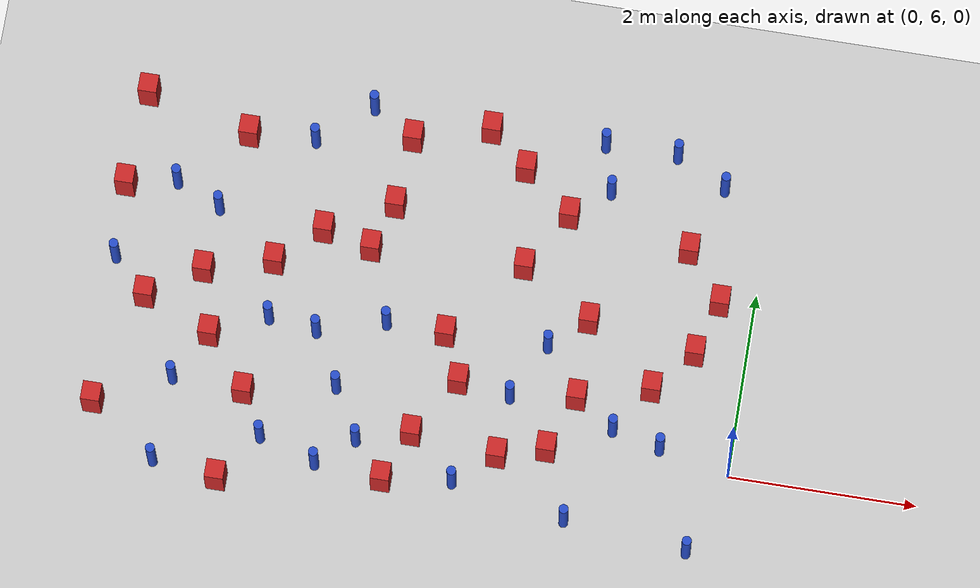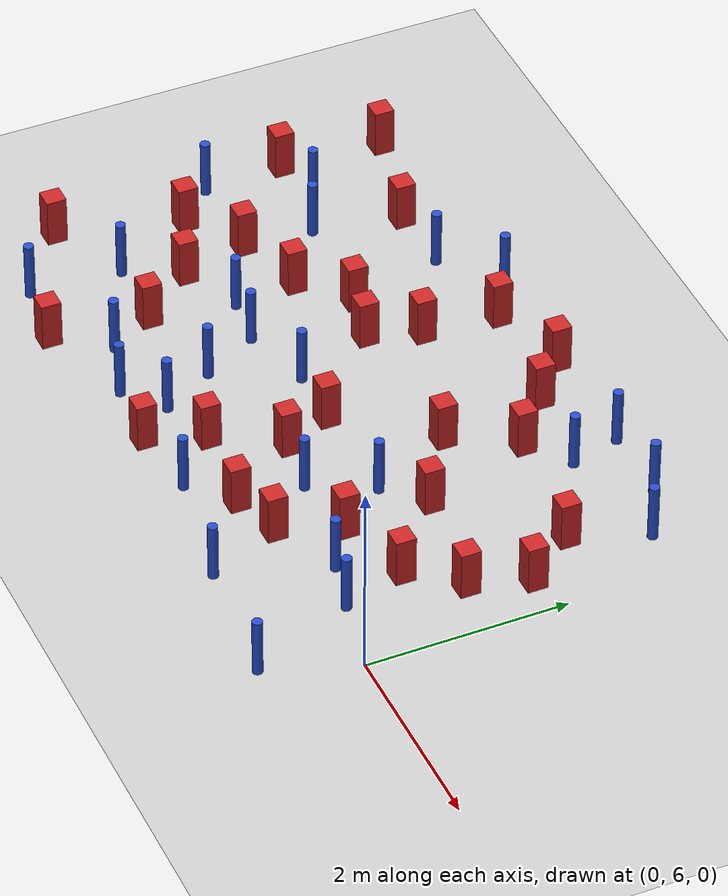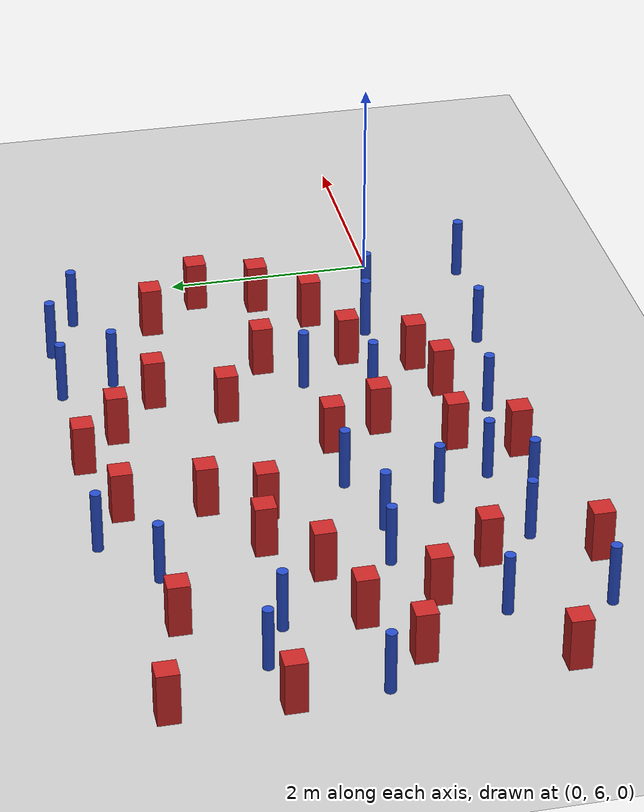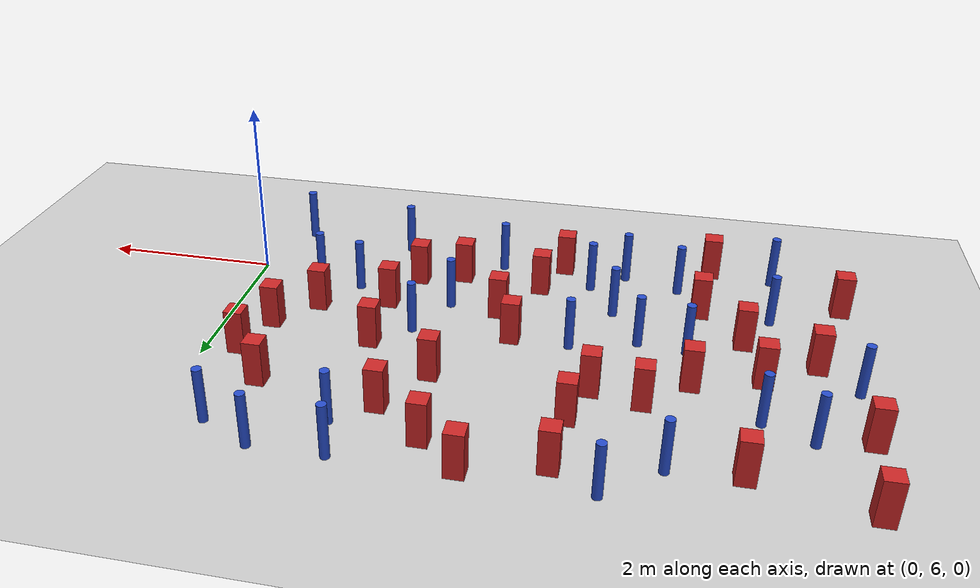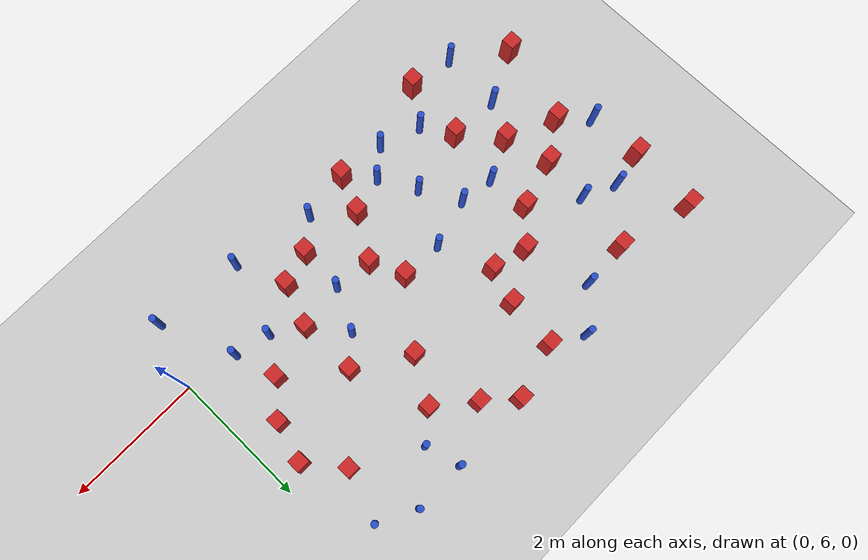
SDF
<sdf version="1.6">
 <world name="default">
  <model name="ground_plane">
   <static>1</static>
   <link name="link">
    <collision name="collision">
     <geometry><plane><normal>0 0 1</normal><size>100 100</size></plane></geometry>
     <surface><friction><ode><mu>100</mu><mu2>50</mu2></ode></friction></surface>
    </collision>
    <visual name="visual">
     <cast_shadows>0</cast_shadows>
     <geometry><plane><normal>0 0 1</normal><size>100 100</size></plane></geometry>
     <material>
      <ambient>1.0 1.0 1.0 1.0</ambient>
      <diffuse>0.8 0.8 0.8 1.0</diffuse>
      <specular>0.01 0.01 0.01 1.000000</specular>
     </material>
    </visual>
   </link>
  </model>
  <model name="square_post_obstacle0">
   <static>true</static>
   <pose>-5.17980695407 6.07324742547 8.22691968438e-08 7.2212513382e-06 -7.54495500217e-07 2.29674213826e-05</pose>
   <link name="link">
    <pose>0 0 0.25 0 -0 0</pose>
    <inertial>
     <mass>100</mass>
     <inertia>
      <ixx>0.166667</ixx>
      <ixy>0</ixy>
      <ixz>0</ixz>
      <iyy>0.166667</iyy>
      <iyz>0</iyz>
      <izz>0.166667</izz>
     </inertia>
    </inertial>
    <collision name="collision"><geometry><box><size>.2 .2 .5</size></box></geometry></collision>
    <visual name="visual">
     <geometry><box><size>.2 .2 .5</size></box></geometry>
     <material>
      <script><name>Gazebo/Red</name><uri>file://media/materials/scripts/gazebo.material</uri></script>
     </material>
    </visual>
   </link>
  </model>
  <model name="pole_obstacle2">
   <static>true</static>
   <pose>-5.05019088084 6.91182319331 2.88873142074e-08 -9.90536690842e-09 4.60219948965e-07 -1.20965994976e-07</pose>
   <link name="link">
    <pose>0 0 0.3 0 -0 0</pose>
    <inertial>
     <mass>1</mass>
     <inertia><ixx>0.145833</ixx><ixy>0</ixy><ixz>0</ixz><iyy>0.145833</iyy><iyz>0</iyz><izz>0.125</izz></inertia>
    </inertial>
    <collision name="collision">
     <geometry><cylinder><radius>0.05</radius><length>.6</length></cylinder></geometry>
    </collision>
    <visual name="visual">
     <geometry><cylinder><radius>0.05</radius><length>.6</length></cylinder></geometry>
     <material>
      <script><name>Gazebo/Blue</name><uri>file://media/materials/scripts/gazebo.material</uri></script>
     </material>
    </visual>
   </link>
  </model>
  <model name="square_post_obstacle2">
   <static>true</static>
   <pose>-5.81809010166 7.31867256626 8.22691968438e-08 7.2212513382e-06 -7.54495500217e-07 2.29674213826e-05</pose>
   <link name="link">
    <pose>0 0 0.25 0 -0 0</pose>
    <inertial>
     <mass>100</mass>
     <inertia>
      <ixx>0.166667</ixx>
      <ixy>0</ixy>
      <ixz>0</ixz>
      <iyy>0.166667</iyy>
      <iyz>0</iyz>
      <izz>0.166667</izz>
     </inertia>
    </inertial>
    <collision name="collision"><geometry><box><size>.2 .2 .5</size></box></geometry></collision>
    <visual name="visual">
     <geometry><box><size>.2 .2 .5</size></box></geometry>
     <material>
      <script><name>Gazebo/Red</name><uri>file://media/materials/scripts/gazebo.material</uri></script>
     </material>
    </visual>
   </link>
  </model>
  <model name="square_post_obstacle8">
   <static>true</static>
   <pose>-3.58809597633 5.36162875197 8.22691968438e-08 7.2212513382e-06 -7.54495500217e-07 2.29674213826e-05</pose>
   <link name="link">
    <pose>0 0 0.25 0 -0 0</pose>
    <inertial>
     <mass>100</mass>
     <inertia>
      <ixx>0.166667</ixx>
      <ixy>0</ixy>
      <ixz>0</ixz>
      <iyy>0.166667</iyy>
      <iyz>0</iyz>
      <izz>0.166667</izz>
     </inertia>
    </inertial>
    <collision name="collision"><geometry><box><size>.2 .2 .5</size></box></geometry></collision>
    <visual name="visual">
     <geometry><box><size>.2 .2 .5</size></box></geometry>
     <material>
      <script><name>Gazebo/Red</name><uri>file://media/materials/scripts/gazebo.material</uri></script>
     </material>
    </visual>
   </link>
  </model>
  <model name="square_post_obstacle9">
   <static>true</static>
   <pose>-2.43418255598 5.8071528394 8.22691968438e-08 7.2212513382e-06 -7.54495500217e-07 2.29674213826e-05</pose>
   <link name="link">
    <pose>0 0 0.25 0 -0 0</pose>
    <inertial>
     <mass>100</mass>
     <inertia>
      <ixx>0.166667</ixx>
      <ixy>0</ixy>
      <ixz>0</ixz>
      <iyy>0.166667</iyy>
      <iyz>0</iyz>
      <izz>0.166667</izz>
     </inertia>
    </inertial>
    <collision name="collision"><geometry><box><size>.2 .2 .5</size></box></geometry></collision>
    <visual name="visual">
     <geometry><box><size>.2 .2 .5</size></box></geometry>
     <material>
      <script><name>Gazebo/Red</name><uri>file://media/materials/scripts/gazebo.material</uri></script>
     </material>
    </visual>
   </link>
  </model>
  <model name="pole_obstacle13">
   <static>true</static>
   <pose>-6.26059618692 8.23797673308 2.88873142074e-08 -9.9053668967e-09 4.60219948993e-07 -1.20965994957e-07</pose>
   <link name="link">
    <pose>0 0 0.3 0 -0 0</pose>
    <inertial>
     <mass>1</mass>
     <inertia><ixx>0.145833</ixx><ixy>0</ixy><ixz>0</ixz><iyy>0.145833</iyy><iyz>0</iyz><izz>0.125</izz></inertia>
    </inertial>
    <collision name="collision">
     <geometry><cylinder><radius>0.05</radius><length>.6</length></cylinder></geometry>
    </collision>
    <visual name="visual">
     <geometry><cylinder><radius>0.05</radius><length>.6</length></cylinder></geometry>
     <material>
      <script><name>Gazebo/Blue</name><uri>file://media/materials/scripts/gazebo.material</uri></script>
     </material>
    </visual>
   </link>
  </model>
  <model name="pole_obstacle14">
   <static>true</static>
   <pose>-1.27438803534 6.27796606329 2.88873142074e-08 -9.90536689852e-09 4.60219948989e-07 -1.2096599496e-07</pose>
   <link name="link">
    <pose>0 0 0.3 0 -0 0</pose>
    <inertial>
     <mass>1</mass>
     <inertia><ixx>0.145833</ixx><ixy>0</ixy><ixz>0</ixz><iyy>0.145833</iyy><iyz>0</iyz><izz>0.125</izz></inertia>
    </inertial>
    <collision name="collision">
     <geometry><cylinder><radius>0.05</radius><length>.6</length></cylinder></geometry>
    </collision>
    <visual name="visual">
     <geometry><cylinder><radius>0.05</radius><length>.6</length></cylinder></geometry>
     <material>
      <script><name>Gazebo/Blue</name><uri>file://media/materials/scripts/gazebo.material</uri></script>
     </material>
    </visual>
   </link>
  </model>
  <model name="pole_obstacle17">
   <static>true</static>
   <pose>-5.99743441476 5.19034438451 2.88873142074e-08 -9.90536690842e-09 4.60219948965e-07 -1.20965994976e-07</pose>
   <link name="link">
    <pose>0 0 0.3 0 -0 0</pose>
    <inertial>
     <mass>1</mass>
     <inertia><ixx>0.145833</ixx><ixy>0</ixy><ixz>0</ixz><iyy>0.145833</iyy><iyz>0</iyz><izz>0.125</izz></inertia>
    </inertial>
    <collision name="collision">
     <geometry><cylinder><radius>0.05</radius><length>.6</length></cylinder></geometry>
    </collision>
    <visual name="visual">
     <geometry><cylinder><radius>0.05</radius><length>.6</length></cylinder></geometry>
     <material>
      <script><name>Gazebo/Blue</name><uri>file://media/materials/scripts/gazebo.material</uri></script>
     </material>
    </visual>
   </link>
  </model>
  <model name="square_post_obstacle14">
   <static>true</static>
   <pose>-5.59246458541 8.87830148658 8.22691968438e-08 7.22125133819e-06 -7.54495500217e-07 2.29674213826e-05</pose>
   <link name="link">
    <pose>0 0 0.25 0 -0 0</pose>
    <inertial>
     <mass>100</mass>
     <inertia>
      <ixx>0.166667</ixx>
      <ixy>0</ixy>
      <ixz>0</ixz>
      <iyy>0.166667</iyy>
      <iyz>0</iyz>
      <izz>0.166667</izz>
     </inertia>
    </inertial>
    <collision name="collision"><geometry><box><size>.2 .2 .5</size></box></geometry></collision>
    <visual name="visual">
     <geometry><box><size>.2 .2 .5</size></box></geometry>
     <material>
      <script><name>Gazebo/Red</name><uri>file://media/materials/scripts/gazebo.material</uri></script>
     </material>
    </visual>
   </link>
  </model>
  <model name="pole_obstacle31">
   <static>true</static>
   <pose>-4.22217192614 6.27587902542 2.88873142074e-08 -9.90536690842e-09 4.60219948965e-07 -1.20965994976e-07</pose>
   <link name="link">
    <pose>0 0 0.3 0 -0 0</pose>
    <inertial>
     <mass>1</mass>
     <inertia><ixx>0.145833</ixx><ixy>0</ixy><ixz>0</ixz><iyy>0.145833</iyy><iyz>0</iyz><izz>0.125</izz></inertia>
    </inertial>
    <collision name="collision">
     <geometry><cylinder><radius>0.05</radius><length>.6</length></cylinder></geometry>
    </collision>
    <visual name="visual">
     <geometry><cylinder><radius>0.05</radius><length>.6</length></cylinder></geometry>
     <material>
      <script><name>Gazebo/Blue</name><uri>file://media/materials/scripts/gazebo.material</uri></script>
     </material>
    </visual>
   </link>
  </model>
  <model name="pole_obstacle39">
   <static>true</static>
   <pose>-4.32792303996 9.38055101068 2.88873142074e-08 -9.9053668967e-09 4.60219948993e-07 -1.20965994957e-07</pose>
   <link name="link">
    <pose>0 0 0.3 0 -0 0</pose>
    <inertial>
     <mass>1</mass>
     <inertia><ixx>0.145833</ixx><ixy>0</ixy><ixz>0</ixz><iyy>0.145833</iyy><iyz>0</iyz><izz>0.125</izz></inertia>
    </inertial>
    <collision name="collision">
     <geometry><cylinder><radius>0.05</radius><length>.6</length></cylinder></geometry>
    </collision>
    <visual name="visual">
     <geometry><cylinder><radius>0.05</radius><length>.6</length></cylinder></geometry>
     <material>
      <script><name>Gazebo/Blue</name><uri>file://media/materials/scripts/gazebo.material</uri></script>
     </material>
    </visual>
   </link>
  </model>
  <model name="pole_obstacle40">
   <static>true</static>
   <pose>-2.39878397548 6.46350765532 2.88873142074e-08 -9.90536689859e-09 4.60219948989e-07 -1.20965994961e-07</pose>
   <link name="link">
    <pose>0 0 0.3 0 -0 0</pose>
    <inertial>
     <mass>1</mass>
     <inertia><ixx>0.145833</ixx><ixy>0</ixy><ixz>0</ixz><iyy>0.145833</iyy><iyz>0</iyz><izz>0.125</izz></inertia>
    </inertial>
    <collision name="collision">
     <geometry><cylinder><radius>0.05</radius><length>.6</length></cylinder></geometry>
    </collision>
    <visual name="visual">
     <geometry><cylinder><radius>0.05</radius><length>.6</length></cylinder></geometry>
     <material>
      <script><name>Gazebo/Blue</name><uri>file://media/materials/scripts/gazebo.material</uri></script>
     </material>
    </visual>
   </link>
  </model>
  <model name="square_post_obstacle33">
   <static>true</static>
   <pose>-0.548821335224 7.24011114074 8.22691968438e-08 7.2212513382e-06 -7.54495500217e-07 2.29674213826e-05</pose>
   <link name="link">
    <pose>0 0 0.25 0 -0 0</pose>
    <inertial>
     <mass>100</mass>
     <inertia>
      <ixx>0.166667</ixx>
      <ixy>0</ixy>
      <ixz>0</ixz>
      <iyy>0.166667</iyy>
      <iyz>0</iyz>
      <izz>0.166667</izz>
     </inertia>
    </inertial>
    <collision name="collision"><geometry><box><size>.2 .2 .5</size></box></geometry></collision>
    <visual name="visual">
     <geometry><box><size>.2 .2 .5</size></box></geometry>
     <material>
      <script><name>Gazebo/Red</name><uri>file://media/materials/scripts/gazebo.material</uri></script>
     </material>
    </visual>
   </link>
  </model>
  <model name="square_post_obstacle36">
   <static>true</static>
   <pose>-4.10678557496 7.83194500794 8.22691968438e-08 7.2212513382e-06 -7.54495500217e-07 2.29674213826e-05</pose>
   <link name="link">
    <pose>0 0 0.25 0 -0 0</pose>
    <inertial>
     <mass>100</mass>
     <inertia>
      <ixx>0.166667</ixx>
      <ixy>0</ixy>
      <ixz>0</ixz>
      <iyy>0.166667</iyy>
      <iyz>0</iyz>
      <izz>0.166667</izz>
     </inertia>
    </inertial>
    <collision name="collision"><geometry><box><size>.2 .2 .5</size></box></geometry></collision>
    <visual name="visual">
     <geometry><box><size>.2 .2 .5</size></box></geometry>
     <material>
      <script><name>Gazebo/Red</name><uri>file://media/materials/scripts/gazebo.material</uri></script>
     </material>
    </visual>
   </link>
  </model>
  <model name="pole_obstacle50">
   <static>true</static>
   <pose>-4.5307311571 6.8447166344 2.88873142074e-08 -9.90536690842e-09 4.60219948965e-07 -1.20965994976e-07</pose>
   <link name="link">
    <pose>0 0 0.3 0 -0 0</pose>
    <inertial>
     <mass>1</mass>
     <inertia><ixx>0.145833</ixx><ixy>0</ixy><ixz>0</ixz><iyy>0.145833</iyy><iyz>0</iyz><izz>0.125</izz></inertia>
    </inertial>
    <collision name="collision">
     <geometry><cylinder><radius>0.05</radius><length>.6</length></cylinder></geometry>
    </collision>
    <visual name="visual">
     <geometry><cylinder><radius>0.05</radius><length>.6</length></cylinder></geometry>
     <material>
      <script><name>Gazebo/Blue</name><uri>file://media/materials/scripts/gazebo.material</uri></script>
     </material>
    </visual>
   </link>
  </model>
  <model name="pole_obstacle54">
   <static>true</static>
   <pose>-3.81259388342 7.05154042566 2.88873142074e-08 -9.90536689859e-09 4.60219948989e-07 -1.20965994961e-07</pose>
   <link name="link">
    <pose>0 0 0.3 0 -0 0</pose>
    <inertial>
     <mass>1</mass>
     <inertia><ixx>0.145833</ixx><ixy>0</ixy><ixz>0</ixz><iyy>0.145833</iyy><iyz>0</iyz><izz>0.125</izz></inertia>
    </inertial>
    <collision name="collision">
     <geometry><cylinder><radius>0.05</radius><length>.6</length></cylinder></geometry>
    </collision>
    <visual name="visual">
     <geometry><cylinder><radius>0.05</radius><length>.6</length></cylinder></geometry>
     <material>
      <script><name>Gazebo/Blue</name><uri>file://media/materials/scripts/gazebo.material</uri></script>
     </material>
    </visual>
   </link>
  </model>
  <model name="square_post_obstacle41">
   <static>true</static>
   <pose>-1.92948947968 5.95527603362 8.22691968438e-08 7.2212513382e-06 -7.54495500217e-07 2.29674213826e-05</pose>
   <link name="link">
    <pose>0 0 0.25 0 -0 0</pose>
    <inertial>
     <mass>100</mass>
     <inertia>
      <ixx>0.166667</ixx>
      <ixy>0</ixy>
      <ixz>0</ixz>
      <iyy>0.166667</iyy>
      <iyz>0</iyz>
      <izz>0.166667</izz>
     </inertia>
    </inertial>
    <collision name="collision"><geometry><box><size>.2 .2 .5</size></box></geometry></collision>
    <visual name="visual">
     <geometry><box><size>.2 .2 .5</size></box></geometry>
     <material>
      <script><name>Gazebo/Red</name><uri>file://media/materials/scripts/gazebo.material</uri></script>
     </material>
    </visual>
   </link>
  </model>
  <model name="pole_obstacle65">
   <static>true</static>
   <pose>-0.313079397114 5.10000997234 2.88873142074e-08 -9.90536689683e-09 4.60219948993e-07 -1.20965994957e-07</pose>
   <link name="link">
    <pose>0 0 0.3 0 -0 0</pose>
    <inertial>
     <mass>1</mass>
     <inertia><ixx>0.145833</ixx><ixy>0</ixy><ixz>0</ixz><iyy>0.145833</iyy><iyz>0</iyz><izz>0.125</izz></inertia>
    </inertial>
    <collision name="collision">
     <geometry><cylinder><radius>0.05</radius><length>.6</length></cylinder></geometry>
    </collision>
    <visual name="visual">
     <geometry><cylinder><radius>0.05</radius><length>.6</length></cylinder></geometry>
     <material>
      <script><name>Gazebo/Blue</name><uri>file://media/materials/scripts/gazebo.material</uri></script>
     </material>
    </visual>
   </link>
  </model>
  <model name="square_post_obstacle51">
   <static>true</static>
   <pose>-3.93028870091 8.3452152961 8.22691968438e-08 7.22125133819e-06 -7.54495500217e-07 2.29674213826e-05</pose>
   <link name="link">
    <pose>0 0 0.25 0 -0 0</pose>
    <inertial>
     <mass>100</mass>
     <inertia>
      <ixx>0.166667</ixx>
      <ixy>0</ixy>
      <ixz>0</ixz>
      <iyy>0.166667</iyy>
      <iyz>0</iyz>
      <izz>0.166667</izz>
     </inertia>
    </inertial>
    <collision name="collision"><geometry><box><size>.2 .2 .5</size></box></geometry></collision>
    <visual name="visual">
     <geometry><box><size>.2 .2 .5</size></box></geometry>
     <material>
      <script><name>Gazebo/Red</name><uri>file://media/materials/scripts/gazebo.material</uri></script>
     </material>
    </visual>
   </link>
  </model>
  <model name="pole_obstacle74">
   <static>true</static>
   <pose>-4.8874790931 8.92053688071 2.88873142074e-08 -9.9053668967e-09 4.60219948993e-07 -1.20965994957e-07</pose>
   <link name="link">
    <pose>0 0 0.3 0 -0 0</pose>
    <inertial>
     <mass>1</mass>
     <inertia><ixx>0.145833</ixx><ixy>0</ixy><ixz>0</ixz><iyy>0.145833</iyy><iyz>0</iyz><izz>0.125</izz></inertia>
    </inertial>
    <collision name="collision">
     <geometry><cylinder><radius>0.05</radius><length>.6</length></cylinder></geometry>
    </collision>
    <visual name="visual">
     <geometry><cylinder><radius>0.05</radius><length>.6</length></cylinder></geometry>
     <material>
      <script><name>Gazebo/Blue</name><uri>file://media/materials/scripts/gazebo.material</uri></script>
     </material>
    </visual>
   </link>
  </model>
  <model name="square_post_obstacle65">
   <static>true</static>
   <pose>-5.64023021162 6.63708945529 8.22691968438e-08 7.2212513382e-06 -7.54495500217e-07 2.29674213826e-05</pose>
   <link name="link">
    <pose>0 0 0.25 0 -0 0</pose>
    <inertial>
     <mass>100</mass>
     <inertia>
      <ixx>0.166667</ixx>
      <ixy>0</ixy>
      <ixz>0</ixz>
      <iyy>0.166667</iyy>
      <iyz>0</iyz>
      <izz>0.166667</izz>
     </inertia>
    </inertial>
    <collision name="collision"><geometry><box><size>.2 .2 .5</size></box></geometry></collision>
    <visual name="visual">
     <geometry><box><size>.2 .2 .5</size></box></geometry>
     <material>
      <script><name>Gazebo/Red</name><uri>file://media/materials/scripts/gazebo.material</uri></script>
     </material>
    </visual>
   </link>
  </model>
  <model name="square_post_obstacle74">
   <static>true</static>
   <pose>-0.778794964683 8.34004250261 8.22691968438e-08 7.22125133819e-06 -7.54495500217e-07 2.29674213826e-05</pose>
   <link name="link">
    <pose>0 0 0.25 0 -0 0</pose>
    <inertial>
     <mass>100</mass>
     <inertia>
      <ixx>0.166667</ixx>
      <ixy>0</ixy>
      <ixz>0</ixz>
      <iyy>0.166667</iyy>
      <iyz>0</iyz>
      <izz>0.166667</izz>
     </inertia>
    </inertial>
    <collision name="collision"><geometry><box><size>.2 .2 .5</size></box></geometry></collision>
    <visual name="visual">
     <geometry><box><size>.2 .2 .5</size></box></geometry>
     <material>
      <script><name>Gazebo/Red</name><uri>file://media/materials/scripts/gazebo.material</uri></script>
     </material>
    </visual>
   </link>
  </model>
  <model name="square_post_obstacle76">
   <static>true</static>
   <pose>-1.70713379739 7.41198890357 8.22691968438e-08 7.2212513382e-06 -7.54495500217e-07 2.29674213826e-05</pose>
   <link name="link">
    <pose>0 0 0.25 0 -0 0</pose>
    <inertial>
     <mass>100</mass>
     <inertia>
      <ixx>0.166667</ixx>
      <ixy>0</ixy>
      <ixz>0</ixz>
      <iyy>0.166667</iyy>
      <iyz>0</iyz>
      <izz>0.166667</izz>
     </inertia>
    </inertial>
    <collision name="collision"><geometry><box><size>.2 .2 .5</size></box></geometry></collision>
    <visual name="visual">
     <geometry><box><size>.2 .2 .5</size></box></geometry>
     <material>
      <script><name>Gazebo/Red</name><uri>file://media/materials/scripts/gazebo.material</uri></script>
     </material>
    </visual>
   </link>
  </model>
  <model name="square_post_obstacle79">
   <static>true</static>
   <pose>-5.29930582358 5.10006019484 8.22691968438e-08 7.2212513382e-06 -7.54495500217e-07 2.29674213826e-05</pose>
   <link name="link">
    <pose>0 0 0.25 0 -0 0</pose>
    <inertial>
     <mass>100</mass>
     <inertia>
      <ixx>0.166667</ixx>
      <ixy>0</ixy>
      <ixz>0</ixz>
      <iyy>0.166667</iyy>
      <iyz>0</iyz>
      <izz>0.166667</izz>
     </inertia>
    </inertial>
    <collision name="collision"><geometry><box><size>.2 .2 .5</size></box></geometry></collision>
    <visual name="visual">
     <geometry><box><size>.2 .2 .5</size></box></geometry>
     <material>
      <script><name>Gazebo/Red</name><uri>file://media/materials/scripts/gazebo.material</uri></script>
     </material>
    </visual>
   </link>
  </model>
  <model name="pole_obstacle90">
   <static>true</static>
   <pose>-5.94487789396 6.10532432955 2.88873142074e-08 -9.90536690842e-09 4.60219948965e-07 -1.20965994976e-07</pose>
   <link name="link">
    <pose>0 0 0.3 0 -0 0</pose>
    <inertial>
     <mass>1</mass>
     <inertia><ixx>0.145833</ixx><ixy>0</ixy><ixz>0</ixz><iyy>0.145833</iyy><iyz>0</iyz><izz>0.125</izz></inertia>
    </inertial>
    <collision name="collision">
     <geometry><cylinder><radius>0.05</radius><length>.6</length></cylinder></geometry>
    </collision>
    <visual name="visual">
     <geometry><cylinder><radius>0.05</radius><length>.6</length></cylinder></geometry>
     <material>
      <script><name>Gazebo/Blue</name><uri>file://media/materials/scripts/gazebo.material</uri></script>
     </material>
    </visual>
   </link>
  </model>
  <model name="square_post_obstacle84">
   <static>true</static>
   <pose>-2.62495617895 8.95597405715 8.22691968438e-08 7.22125133819e-06 -7.54495500217e-07 2.29674213826e-05</pose>
   <link name="link">
    <pose>0 0 0.25 0 -0 0</pose>
    <inertial>
     <mass>100</mass>
     <inertia>
      <ixx>0.166667</ixx>
      <ixy>0</ixy>
      <ixz>0</ixz>
      <iyy>0.166667</iyy>
      <iyz>0</iyz>
      <izz>0.166667</izz>
     </inertia>
    </inertial>
    <collision name="collision"><geometry><box><size>.2 .2 .5</size></box></geometry></collision>
    <visual name="visual">
     <geometry><box><size>.2 .2 .5</size></box></geometry>
     <material>
      <script><name>Gazebo/Red</name><uri>file://media/materials/scripts/gazebo.material</uri></script>
     </material>
    </visual>
   </link>
  </model>
  <model name="pole_obstacle97">
   <static>true</static>
   <pose>-6.76623176103 7.32268680471 2.88873142074e-08 -9.90536690842e-09 4.60219948965e-07 -1.20965994976e-07</pose>
   <link name="link">
    <pose>0 0 0.3 0 -0 0</pose>
    <inertial>
     <mass>1</mass>
     <inertia><ixx>0.145833</ixx><ixy>0</ixy><ixz>0</ixz><iyy>0.145833</iyy><iyz>0</iyz><izz>0.125</izz></inertia>
    </inertial>
    <collision name="collision">
     <geometry><cylinder><radius>0.05</radius><length>.6</length></cylinder></geometry>
    </collision>
    <visual name="visual">
     <geometry><cylinder><radius>0.05</radius><length>.6</length></cylinder></geometry>
     <material>
      <script><name>Gazebo/Blue</name><uri>file://media/materials/scripts/gazebo.material</uri></script>
     </material>
    </visual>
   </link>
  </model>
  <model name="square_post_obstacle89">
   <static>true</static>
   <pose>-2.09315893966 8.52485105776 8.22691968438e-08 7.22125133819e-06 -7.54495500217e-07 2.29674213826e-05</pose>
   <link name="link">
    <pose>0 0 0.25 0 -0 0</pose>
    <inertial>
     <mass>100</mass>
     <inertia>
      <ixx>0.166667</ixx>
      <ixy>0</ixy>
      <ixz>0</ixz>
      <iyy>0.166667</iyy>
      <iyz>0</iyz>
      <izz>0.166667</izz>
     </inertia>
    </inertial>
    <collision name="collision"><geometry><box><size>.2 .2 .5</size></box></geometry></collision>
    <visual name="visual">
     <geometry><box><size>.2 .2 .5</size></box></geometry>
     <material>
      <script><name>Gazebo/Red</name><uri>file://media/materials/scripts/gazebo.material</uri></script>
     </material>
    </visual>
   </link>
  </model>
  <model name="pole_obstacle101">
   <static>true</static>
   <pose>-1.05711100294 9.36194015985 2.88873142074e-08 -9.90536690474e-09 4.60219948974e-07 -1.2096599497e-07</pose>
   <link name="link">
    <pose>0 0 0.3 0 -0 0</pose>
    <inertial>
     <mass>1</mass>
     <inertia><ixx>0.145833</ixx><ixy>0</ixy><ixz>0</ixz><iyy>0.145833</iyy><iyz>0</iyz><izz>0.125</izz></inertia>
    </inertial>
    <collision name="collision">
     <geometry><cylinder><radius>0.05</radius><length>.6</length></cylinder></geometry>
    </collision>
    <visual name="visual">
     <geometry><cylinder><radius>0.05</radius><length>.6</length></cylinder></geometry>
     <material>
      <script><name>Gazebo/Blue</name><uri>file://media/materials/scripts/gazebo.material</uri></script>
     </material>
    </visual>
   </link>
  </model>
  <model name="square_post_obstacle94">
   <static>true</static>
   <pose>-3.05129859297 9.32607343445 8.22691968438e-08 7.2212513382e-06 -7.54495500217e-07 2.29674213826e-05</pose>
   <link name="link">
    <pose>0 0 0.25 0 -0 0</pose>
    <inertial>
     <mass>100</mass>
     <inertia>
      <ixx>0.166667</ixx>
      <ixy>0</ixy>
      <ixz>0</ixz>
      <iyy>0.166667</iyy>
      <iyz>0</iyz>
      <izz>0.166667</izz>
     </inertia>
    </inertial>
    <collision name="collision"><geometry><box><size>.2 .2 .5</size></box></geometry></collision>
    <visual name="visual">
     <geometry><box><size>.2 .2 .5</size></box></geometry>
     <material>
      <script><name>Gazebo/Red</name><uri>file://media/materials/scripts/gazebo.material</uri></script>
     </material>
    </visual>
   </link>
  </model>
  <model name="square_post_obstacle113">
   <static>true</static>
   <pose>-3.86530835624 9.10043318098 8.22691968438e-08 7.2212513382e-06 -7.54495500217e-07 2.29674213826e-05</pose>
   <link name="link">
    <pose>0 0 0.25 0 -0 0</pose>
    <inertial>
     <mass>100</mass>
     <inertia>
      <ixx>0.166667</ixx>
      <ixy>0</ixy>
      <ixz>0</ixz>
      <iyy>0.166667</iyy>
      <iyz>0</iyz>
      <izz>0.166667</izz>
     </inertia>
    </inertial>
    <collision name="collision"><geometry><box><size>.2 .2 .5</size></box></geometry></collision>
    <visual name="visual">
     <geometry><box><size>.2 .2 .5</size></box></geometry>
     <material>
      <script><name>Gazebo/Red</name><uri>file://media/materials/scripts/gazebo.material</uri></script>
     </material>
    </visual>
   </link>
  </model>
  <model name="square_post_obstacle118">
   <static>true</static>
   <pose>-6.72560600519 9.15992734937 8.22691968438e-08 7.22125133819e-06 -7.54495500217e-07 2.29674213826e-05</pose>
   <link name="link">
    <pose>0 0 0.25 0 -0 0</pose>
    <inertial>
     <mass>100</mass>
     <inertia>
      <ixx>0.166667</ixx>
      <ixy>0</ixy>
      <ixz>0</ixz>
      <iyy>0.166667</iyy>
      <iyz>0</iyz>
      <izz>0.166667</izz>
     </inertia>
    </inertial>
    <collision name="collision"><geometry><box><size>.2 .2 .5</size></box></geometry></collision>
    <visual name="visual">
     <geometry><box><size>.2 .2 .5</size></box></geometry>
     <material>
      <script><name>Gazebo/Red</name><uri>file://media/materials/scripts/gazebo.material</uri></script>
     </material>
    </visual>
   </link>
  </model>
  <model name="pole_obstacle123">
   <static>true</static>
   <pose>-4.31091074845 5.42353843948 2.88873142074e-08 -9.90536690842e-09 4.60219948965e-07 -1.20965994976e-07</pose>
   <link name="link">
    <pose>0 0 0.3 0 -0 0</pose>
    <inertial>
     <mass>1</mass>
     <inertia><ixx>0.145833</ixx><ixy>0</ixy><ixz>0</ixz><iyy>0.145833</iyy><iyz>0</iyz><izz>0.125</izz></inertia>
    </inertial>
    <collision name="collision">
     <geometry><cylinder><radius>0.05</radius><length>.6</length></cylinder></geometry>
    </collision>
    <visual name="visual">
     <geometry><cylinder><radius>0.05</radius><length>.6</length></cylinder></geometry>
     <material>
      <script><name>Gazebo/Blue</name><uri>file://media/materials/scripts/gazebo.material</uri></script>
     </material>
    </visual>
   </link>
  </model>
  <model name="square_post_obstacle123">
   <static>true</static>
   <pose>-0.939691806182 6.77877279317 8.22691968438e-08 7.22125133819e-06 -7.54495500217e-07 2.29674213826e-05</pose>
   <link name="link">
    <pose>0 0 0.25 0 -0 0</pose>
    <inertial>
     <mass>100</mass>
     <inertia>
      <ixx>0.166667</ixx>
      <ixy>0</ixy>
      <ixz>0</ixz>
      <iyy>0.166667</iyy>
      <iyz>0</iyz>
      <izz>0.166667</izz>
     </inertia>
    </inertial>
    <collision name="collision"><geometry><box><size>.2 .2 .5</size></box></geometry></collision>
    <visual name="visual">
     <geometry><box><size>.2 .2 .5</size></box></geometry>
     <material>
      <script><name>Gazebo/Red</name><uri>file://media/materials/scripts/gazebo.material</uri></script>
     </material>
    </visual>
   </link>
  </model>
  <model name="pole_obstacle138">
   <static>true</static>
   <pose>-1.69504239993 8.85493945958 2.88873142074e-08 -9.90536690474e-09 4.60219948974e-07 -1.2096599497e-07</pose>
   <link name="link">
    <pose>0 0 0.3 0 -0 0</pose>
    <inertial>
     <mass>1</mass>
     <inertia><ixx>0.145833</ixx><ixy>0</ixy><ixz>0</ixz><iyy>0.145833</iyy><iyz>0</iyz><izz>0.125</izz></inertia>
    </inertial>
    <collision name="collision">
     <geometry><cylinder><radius>0.05</radius><length>.6</length></cylinder></geometry>
    </collision>
    <visual name="visual">
     <geometry><cylinder><radius>0.05</radius><length>.6</length></cylinder></geometry>
     <material>
      <script><name>Gazebo/Blue</name><uri>file://media/materials/scripts/gazebo.material</uri></script>
     </material>
    </visual>
   </link>
  </model>
  <model name="square_post_obstacle140">
   <static>true</static>
   <pose>-3.17755727759 7.02952442936 8.22691968438e-08 7.2212513382e-06 -7.54495500217e-07 2.29674213826e-05</pose>
   <link name="link">
    <pose>0 0 0.25 0 -0 0</pose>
    <inertial>
     <mass>100</mass>
     <inertia>
      <ixx>0.166667</ixx>
      <ixy>0</ixy>
      <ixz>0</ixz>
      <iyy>0.166667</iyy>
      <iyz>0</iyz>
      <izz>0.166667</izz>
     </inertia>
    </inertial>
    <collision name="collision"><geometry><box><size>.2 .2 .5</size></box></geometry></collision>
    <visual name="visual">
     <geometry><box><size>.2 .2 .5</size></box></geometry>
     <material>
      <script><name>Gazebo/Red</name><uri>file://media/materials/scripts/gazebo.material</uri></script>
     </material>
    </visual>
   </link>
  </model>
  <model name="square_post_obstacle141">
   <static>true</static>
   <pose>-2.4747089343 7.89140189645 8.22691968438e-08 7.2212513382e-06 -7.54495500217e-07 2.29674213826e-05</pose>
   <link name="link">
    <pose>0 0 0.25 0 -0 0</pose>
    <inertial>
     <mass>100</mass>
     <inertia>
      <ixx>0.166667</ixx>
      <ixy>0</ixy>
      <ixz>0</ixz>
      <iyy>0.166667</iyy>
      <iyz>0</iyz>
      <izz>0.166667</izz>
     </inertia>
    </inertial>
    <collision name="collision"><geometry><box><size>.2 .2 .5</size></box></geometry></collision>
    <visual name="visual">
     <geometry><box><size>.2 .2 .5</size></box></geometry>
     <material>
      <script><name>Gazebo/Red</name><uri>file://media/materials/scripts/gazebo.material</uri></script>
     </material>
    </visual>
   </link>
  </model>
  <model name="square_post_obstacle145">
   <static>true</static>
   <pose>-5.09422204818 7.52568640813 8.22691968438e-08 7.2212513382e-06 -7.54495500217e-07 2.29674213826e-05</pose>
   <link name="link">
    <pose>0 0 0.25 0 -0 0</pose>
    <inertial>
     <mass>100</mass>
     <inertia>
      <ixx>0.166667</ixx>
      <ixy>0</ixy>
      <ixz>0</ixz>
      <iyy>0.166667</iyy>
      <iyz>0</iyz>
      <izz>0.166667</izz>
     </inertia>
    </inertial>
    <collision name="collision"><geometry><box><size>.2 .2 .5</size></box></geometry></collision>
    <visual name="visual">
     <geometry><box><size>.2 .2 .5</size></box></geometry>
     <material>
      <script><name>Gazebo/Red</name><uri>file://media/materials/scripts/gazebo.material</uri></script>
     </material>
    </visual>
   </link>
  </model>
  <model name="square_post_obstacle150">
   <static>true</static>
   <pose>-3.35754335766 5.90336605202 8.22691968438e-08 7.2212513382e-06 -7.54495500217e-07 2.29674213826e-05</pose>
   <link name="link">
    <pose>0 0 0.25 0 -0 0</pose>
    <inertial>
     <mass>100</mass>
     <inertia>
      <ixx>0.166667</ixx>
      <ixy>0</ixy>
      <ixz>0</ixz>
      <iyy>0.166667</iyy>
      <iyz>0</iyz>
      <izz>0.166667</izz>
     </inertia>
    </inertial>
    <collision name="collision"><geometry><box><size>.2 .2 .5</size></box></geometry></collision>
    <visual name="visual">
     <geometry><box><size>.2 .2 .5</size></box></geometry>
     <material>
      <script><name>Gazebo/Red</name><uri>file://media/materials/scripts/gazebo.material</uri></script>
     </material>
    </visual>
   </link>
  </model>
  <model name="pole_obstacle156">
   <static>true</static>
   <pose>-1.83225106668 9.36054841782 2.88873142074e-08 -9.90536690474e-09 4.60219948974e-07 -1.2096599497e-07</pose>
   <link name="link">
    <pose>0 0 0.3 0 -0 0</pose>
    <inertial>
     <mass>1</mass>
     <inertia><ixx>0.145833</ixx><ixy>0</ixy><ixz>0</ixz><iyy>0.145833</iyy><iyz>0</iyz><izz>0.125</izz></inertia>
    </inertial>
    <collision name="collision">
     <geometry><cylinder><radius>0.05</radius><length>.6</length></cylinder></geometry>
    </collision>
    <visual name="visual">
     <geometry><cylinder><radius>0.05</radius><length>.6</length></cylinder></geometry>
     <material>
      <script><name>Gazebo/Blue</name><uri>file://media/materials/scripts/gazebo.material</uri></script>
     </material>
    </visual>
   </link>
  </model>
  <model name="pole_obstacle163">
   <static>true</static>
   <pose>-2.09059923024 7.07033053629 2.88873142074e-08 -9.90536689859e-09 4.60219948989e-07 -1.20965994961e-07</pose>
   <link name="link">
    <pose>0 0 0.3 0 -0 0</pose>
    <inertial>
     <mass>1</mass>
     <inertia><ixx>0.145833</ixx><ixy>0</ixy><ixz>0</ixz><iyy>0.145833</iyy><iyz>0</iyz><izz>0.125</izz></inertia>
    </inertial>
    <collision name="collision">
     <geometry><cylinder><radius>0.05</radius><length>.6</length></cylinder></geometry>
    </collision>
    <visual name="visual">
     <geometry><cylinder><radius>0.05</radius><length>.6</length></cylinder></geometry>
     <material>
      <script><name>Gazebo/Blue</name><uri>file://media/materials/scripts/gazebo.material</uri></script>
     </material>
    </visual>
   </link>
  </model>
  <model name="square_post_obstacle158">
   <static>true</static>
   <pose>-1.70276883824 6.56469239747 8.22691968438e-08 7.2212513382e-06 -7.54495500217e-07 2.29674213826e-05</pose>
   <link name="link">
    <pose>0 0 0.25 0 -0 0</pose>
    <inertial>
     <mass>100</mass>
     <inertia>
      <ixx>0.166667</ixx>
      <ixy>0</ixy>
      <ixz>0</ixz>
      <iyy>0.166667</iyy>
      <iyz>0</iyz>
      <izz>0.166667</izz>
     </inertia>
    </inertial>
    <collision name="collision"><geometry><box><size>.2 .2 .5</size></box></geometry></collision>
    <visual name="visual">
     <geometry><box><size>.2 .2 .5</size></box></geometry>
     <material>
      <script><name>Gazebo/Red</name><uri>file://media/materials/scripts/gazebo.material</uri></script>
     </material>
    </visual>
   </link>
  </model>
  <model name="pole_obstacle165">
   <static>true</static>
   <pose>-4.92445335672 5.61920266515 2.88873142074e-08 -9.90536690842e-09 4.60219948965e-07 -1.20965994976e-07</pose>
   <link name="link">
    <pose>0 0 0.3 0 -0 0</pose>
    <inertial>
     <mass>1</mass>
     <inertia><ixx>0.145833</ixx><ixy>0</ixy><ixz>0</ixz><iyy>0.145833</iyy><iyz>0</iyz><izz>0.125</izz></inertia>
    </inertial>
    <collision name="collision">
     <geometry><cylinder><radius>0.05</radius><length>.6</length></cylinder></geometry>
    </collision>
    <visual name="visual">
     <geometry><cylinder><radius>0.05</radius><length>.6</length></cylinder></geometry>
     <material>
      <script><name>Gazebo/Blue</name><uri>file://media/materials/scripts/gazebo.material</uri></script>
     </material>
    </visual>
   </link>
  </model>
  <model name="pole_obstacle175">
   <static>true</static>
   <pose>-0.755837715006 6.15561554373 2.88873142074e-08 -9.90536689661e-09 4.60219948993e-07 -1.20965994957e-07</pose>
   <link name="link">
    <pose>0 0 0.3 0 -0 0</pose>
    <inertial>
     <mass>1</mass>
     <inertia><ixx>0.145833</ixx><ixy>0</ixy><ixz>0</ixz><iyy>0.145833</iyy><iyz>0</iyz><izz>0.125</izz></inertia>
    </inertial>
    <collision name="collision">
     <geometry><cylinder><radius>0.05</radius><length>.6</length></cylinder></geometry>
    </collision>
    <visual name="visual">
     <geometry><cylinder><radius>0.05</radius><length>.6</length></cylinder></geometry>
     <material>
      <script><name>Gazebo/Blue</name><uri>file://media/materials/scripts/gazebo.material</uri></script>
     </material>
    </visual>
   </link>
  </model>
  <model name="square_post_obstacle174">
   <static>true</static>
   <pose>-4.63528674641 7.95191400436 8.22691968438e-08 7.22125133819e-06 -7.54495500217e-07 2.29674213826e-05</pose>
   <link name="link">
    <pose>0 0 0.25 0 -0 0</pose>
    <inertial>
     <mass>100</mass>
     <inertia>
      <ixx>0.166667</ixx>
      <ixy>0</ixy>
      <ixz>0</ixz>
      <iyy>0.166667</iyy>
      <iyz>0</iyz>
      <izz>0.166667</izz>
     </inertia>
    </inertial>
    <collision name="collision"><geometry><box><size>.2 .2 .5</size></box></geometry></collision>
    <visual name="visual">
     <geometry><box><size>.2 .2 .5</size></box></geometry>
     <material>
      <script><name>Gazebo/Red</name><uri>file://media/materials/scripts/gazebo.material</uri></script>
     </material>
    </visual>
   </link>
  </model>
  <model name="square_post_obstacle189">
   <static>true</static>
   <pose>-6.7954981379 8.13009737335 8.22691968438e-08 7.22125133819e-06 -7.54495500217e-07 2.29674213826e-05</pose>
   <link name="link">
    <pose>0 0 0.25 0 -0 0</pose>
    <inertial>
     <mass>100</mass>
     <inertia>
      <ixx>0.166667</ixx>
      <ixy>0</ixy>
      <ixz>0</ixz>
      <iyy>0.166667</iyy>
      <iyz>0</iyz>
      <izz>0.166667</izz>
     </inertia>
    </inertial>
    <collision name="collision"><geometry><box><size>.2 .2 .5</size></box></geometry></collision>
    <visual name="visual">
     <geometry><box><size>.2 .2 .5</size></box></geometry>
     <material>
      <script><name>Gazebo/Red</name><uri>file://media/materials/scripts/gazebo.material</uri></script>
     </material>
    </visual>
   </link>
  </model>
  <model name="square_post_obstacle194">
   <static>true</static>
   <pose>-2.95987490345 6.53900240245 8.22691968438e-08 7.2212513382e-06 -7.54495500217e-07 2.29674213826e-05</pose>
   <link name="link">
    <pose>0 0 0.25 0 -0 0</pose>
    <inertial>
     <mass>100</mass>
     <inertia>
      <ixx>0.166667</ixx>
      <ixy>0</ixy>
      <ixz>0</ixz>
      <iyy>0.166667</iyy>
      <iyz>0</iyz>
      <izz>0.166667</izz>
     </inertia>
    </inertial>
    <collision name="collision"><geometry><box><size>.2 .2 .5</size></box></geometry></collision>
    <visual name="visual">
     <geometry><box><size>.2 .2 .5</size></box></geometry>
     <material>
      <script><name>Gazebo/Red</name><uri>file://media/materials/scripts/gazebo.material</uri></script>
     </material>
    </visual>
   </link>
  </model>
  <model name="square_post_obstacle196">
   <static>true</static>
   <pose>-6.38182034029 6.94635299183 8.22691968438e-08 7.2212513382e-06 -7.54495500217e-07 2.29674213826e-05</pose>
   <link name="link">
    <pose>0 0 0.25 0 -0 0</pose>
    <inertial>
     <mass>100</mass>
     <inertia>
      <ixx>0.166667</ixx>
      <ixy>0</ixy>
      <ixz>0</ixz>
      <iyy>0.166667</iyy>
      <iyz>0</iyz>
      <izz>0.166667</izz>
     </inertia>
    </inertial>
    <collision name="collision"><geometry><box><size>.2 .2 .5</size></box></geometry></collision>
    <visual name="visual">
     <geometry><box><size>.2 .2 .5</size></box></geometry>
     <material>
      <script><name>Gazebo/Red</name><uri>file://media/materials/scripts/gazebo.material</uri></script>
     </material>
    </visual>
   </link>
  </model>
  <model name="square_post_obstacle202">
   <static>true</static>
   <pose>-6.72393668087 5.72292248296 8.22691968438e-08 7.2212513382e-06 -7.54495500217e-07 2.29674213826e-05</pose>
   <link name="link">
    <pose>0 0 0.25 0 -0 0</pose>
    <inertial>
     <mass>100</mass>
     <inertia>
      <ixx>0.166667</ixx>
      <ixy>0</ixy>
      <ixz>0</ixz>
      <iyy>0.166667</iyy>
      <iyz>0</iyz>
      <izz>0.166667</izz>
     </inertia>
    </inertial>
    <collision name="collision"><geometry><box><size>.2 .2 .5</size></box></geometry></collision>
    <visual name="visual">
     <geometry><box><size>.2 .2 .5</size></box></geometry>
     <material>
      <script><name>Gazebo/Red</name><uri>file://media/materials/scripts/gazebo.material</uri></script>
     </material>
    </visual>
   </link>
  </model>
  <model name="square_post_obstacle203">
   <static>true</static>
   <pose>-0.37232464064 7.82324592753 8.22691968438e-08 7.22125133819e-06 -7.54495500217e-07 2.29674213826e-05</pose>
   <link name="link">
    <pose>0 0 0.25 0 -0 0</pose>
    <inertial>
     <mass>100</mass>
     <inertia>
      <ixx>0.166667</ixx>
      <ixy>0</ixy>
      <ixz>0</ixz>
      <iyy>0.166667</iyy>
      <iyz>0</iyz>
      <izz>0.166667</izz>
     </inertia>
    </inertial>
    <collision name="collision"><geometry><box><size>.2 .2 .5</size></box></geometry></collision>
    <visual name="visual">
     <geometry><box><size>.2 .2 .5</size></box></geometry>
     <material>
      <script><name>Gazebo/Red</name><uri>file://media/materials/scripts/gazebo.material</uri></script>
     </material>
    </visual>
   </link>
  </model>
  <model name="pole_obstacle200">
   <static>true</static>
   <pose>-2.85322415929 5.45256515117 2.88873142074e-08 -9.90536689859e-09 4.60219948989e-07 -1.20965994961e-07</pose>
   <link name="link">
    <pose>0 0 0.3 0 -0 0</pose>
    <inertial>
     <mass>1</mass>
     <inertia><ixx>0.145833</ixx><ixy>0</ixy><ixz>0</ixz><iyy>0.145833</iyy><iyz>0</iyz><izz>0.125</izz></inertia>
    </inertial>
    <collision name="collision">
     <geometry><cylinder><radius>0.05</radius><length>.6</length></cylinder></geometry>
    </collision>
    <visual name="visual">
     <geometry><cylinder><radius>0.05</radius><length>.6</length></cylinder></geometry>
     <material>
      <script><name>Gazebo/Blue</name><uri>file://media/materials/scripts/gazebo.material</uri></script>
     </material>
    </visual>
   </link>
  </model>
  <model name="pole_obstacle207">
   <static>true</static>
   <pose>-5.77287239098 8.01953646282 2.88873142074e-08 -9.90536690354e-09 4.60219948977e-07 -1.20965994967e-07</pose>
   <link name="link">
    <pose>0 0 0.3 0 -0 0</pose>
    <inertial>
     <mass>1</mass>
     <inertia><ixx>0.145833</ixx><ixy>0</ixy><ixz>0</ixz><iyy>0.145833</iyy><iyz>0</iyz><izz>0.125</izz></inertia>
    </inertial>
    <collision name="collision">
     <geometry><cylinder><radius>0.05</radius><length>.6</length></cylinder></geometry>
    </collision>
    <visual name="visual">
     <geometry><cylinder><radius>0.05</radius><length>.6</length></cylinder></geometry>
     <material>
      <script><name>Gazebo/Blue</name><uri>file://media/materials/scripts/gazebo.material</uri></script>
     </material>
    </visual>
   </link>
  </model>
  <model name="pole_obstacle210">
   <static>true</static>
   <pose>-1.63094998523 5.23098118419 2.88873142074e-08 -9.90536689852e-09 4.60219948989e-07 -1.2096599496e-07</pose>
   <link name="link">
    <pose>0 0 0.3 0 -0 0</pose>
    <inertial>
     <mass>1</mass>
     <inertia><ixx>0.145833</ixx><ixy>0</ixy><ixz>0</ixz><iyy>0.145833</iyy><iyz>0</iyz><izz>0.125</izz></inertia>
    </inertial>
    <collision name="collision">
     <geometry><cylinder><radius>0.05</radius><length>.6</length></cylinder></geometry>
    </collision>
    <visual name="visual">
     <geometry><cylinder><radius>0.05</radius><length>.6</length></cylinder></geometry>
     <material>
      <script><name>Gazebo/Blue</name><uri>file://media/materials/scripts/gazebo.material</uri></script>
     </material>
    </visual>
   </link>
  </model>
  <model name="pole_obstacle213">
   <static>true</static>
   <pose>-3.92389999087 5.74108002041 2.88873142074e-08 -9.90536692062e-09 4.60219948937e-07 -1.20965994985e-07</pose>
   <link name="link">
    <pose>0 0 0.3 0 -0 0</pose>
    <inertial>
     <mass>1</mass>
     <inertia><ixx>0.145833</ixx><ixy>0</ixy><ixz>0</ixz><iyy>0.145833</iyy><iyz>0</iyz><izz>0.125</izz></inertia>
    </inertial>
    <collision name="collision">
     <geometry><cylinder><radius>0.05</radius><length>.6</length></cylinder></geometry>
    </collision>
    <visual name="visual">
     <geometry><cylinder><radius>0.05</radius><length>.6</length></cylinder></geometry>
     <material>
      <script><name>Gazebo/Blue</name><uri>file://media/materials/scripts/gazebo.material</uri></script>
     </material>
    </visual>
   </link>
  </model>
  <model name="pole_obstacle214">
   <static>true</static>
   <pose>-0.510377990867 9.08133002041 2.88873142074e-08 -9.90536691171e-09 4.60219948957e-07 -1.20965994981e-07</pose>
   <link name="link">
    <pose>0 0 0.3 0 -0 0</pose>
    <inertial>
     <mass>1</mass>
     <inertia><ixx>0.145833</ixx><ixy>0</ixy><ixz>0</ixz><iyy>0.145833</iyy><iyz>0</iyz><izz>0.125</izz></inertia>
    </inertial>
    <collision name="collision">
     <geometry><cylinder><radius>0.05</radius><length>.6</length></cylinder></geometry>
    </collision>
    <visual name="visual">
     <geometry><cylinder><radius>0.05</radius><length>.6</length></cylinder></geometry>
     <material>
      <script><name>Gazebo/Blue</name><uri>file://media/materials/scripts/gazebo.material</uri></script>
     </material>
    </visual>
   </link>
  </model>
 </world>
</sdf>
